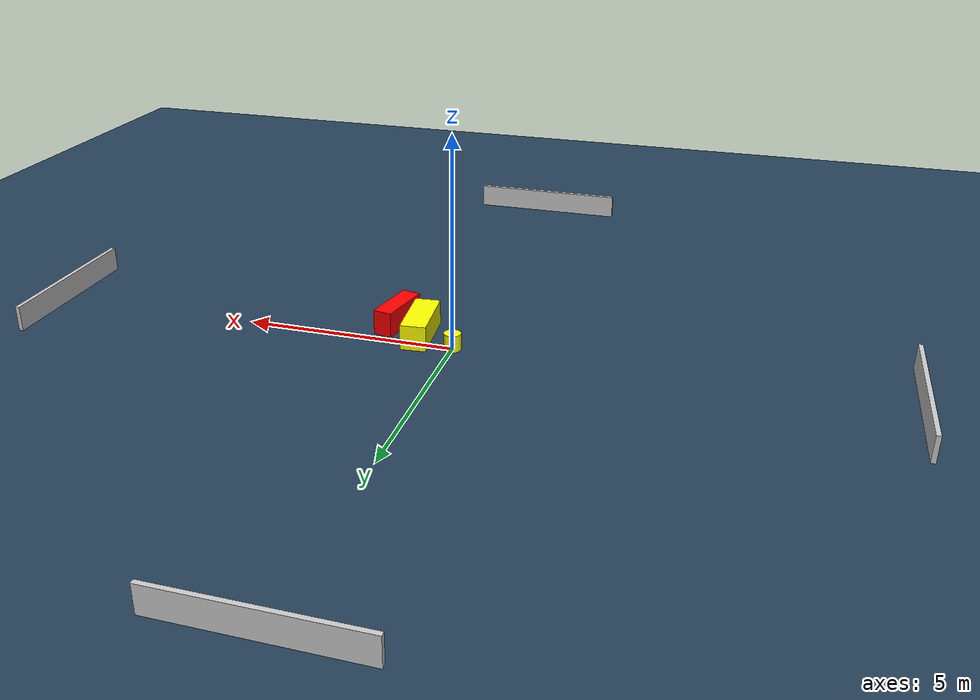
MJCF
<?xml version="1.0" ?>
<mujoco model="generated_environment">
  <option timestep="0.01" integrator="RK4" cone="elliptic"/>
  <default>
    <geom density="1"/>
  </default>
  <asset>
    <texture builtin="gradient" height="3072" name="skybox" rgb1="0.3 0.5 0.7" rgb2="0 0 0" type="skybox" width="512"/>
    <texture builtin="checker" height="300" name="groundplane" rgb1="0.2 0.3 0.4" rgb2="0.1 0.2 0.3" type="2d" width="300"/>
    <material name="groundplane" reflectance="0.2" texrepeat="5 5" texture="groundplane"/>
  </asset>
  <worldbody>
    <light dir="0 0 -1" directional="true" pos="0 0 1.5"/>
    <geom condim="3" friction="0.5 0.005 0.001" material="groundplane" name="floor" pos="0 0 0" size="0 0 0.05" type="plane"/>
    <body name="walls">
      <geom name="wall_1" condim="4" pos="-10.0 0.0 0.3" rgba="0.800000011920929 0.800000011920929 0.800000011920929 1.0" size="0.05 2.0 0.3" type="box"/>
      <geom name="wall_2" condim="4" pos="10.0 0.0 0.3" rgba="0.800000011920929 0.800000011920929 0.800000011920929 1.0" size="0.05 2.0 0.3" type="box"/>
      <geom name="wall_3" condim="4" pos="0.0 -10.0 0.3" rgba="0.800000011920929 0.800000011920929 0.800000011920929 1.0" size="2.0 0.05 0.3" type="box"/>
      <geom name="wall_4" condim="4" pos="0.0 10.0 0.3" rgba="0.800000011920929 0.800000011920929 0.800000011920929 1.0" size="2.0 0.05 0.3" type="box"/>
    </body>
    <body name="robot">
      <joint name="joint_x" type="slide" pos="0 0 0" axis="1 0 0"/>
      <joint name="joint_y" type="slide" pos="0 0 0" axis="0 1 0"/>
      <geom name="robot" type="cylinder" pos="0.0 0.0 0.2" size="0.2 0.2 0.0" mass="5.0" friction="1.0 0.005 0.0001" condim="4" rgba="1.0 1.0 0.0 1.0"/>
    </body>
    <body name="obstacle_1_movable">
      <geom name="obstacle_1_movable" condim="4" pos="0.9037185760413853 -0.43380446239692294 0.3" euler="0 0 184.95059778737797" friction="0.0 0.005 0.001" rgba="1.0 1.0 0.0 1.0" size="0.30003949707841254 0.7767052272544881 0.3" type="box" mass="0.1"/>
      <joint type="free"/>
    </body>
    <body name="obstacle_2_static">
      <geom name="obstacle_2_static" condim="4" pos="1.624802998933549 -0.857981248804024 0.3" euler="0 0 168.1813420010503" friction="0.0 0.005 0.001" rgba="1.0 0.0 0.0 1.0" size="0.22563546294141548 0.6751406100197662 0.3" type="box"/>
    </body>
  </worldbody>
  <actuator>
    <motor name="actuator_x" joint="joint_x" gear="1" ctrlrange="-1 1"/>
    <motor name="actuator_y" joint="joint_y" gear="1" ctrlrange="-1 1"/>
  </actuator>
</mujoco>
